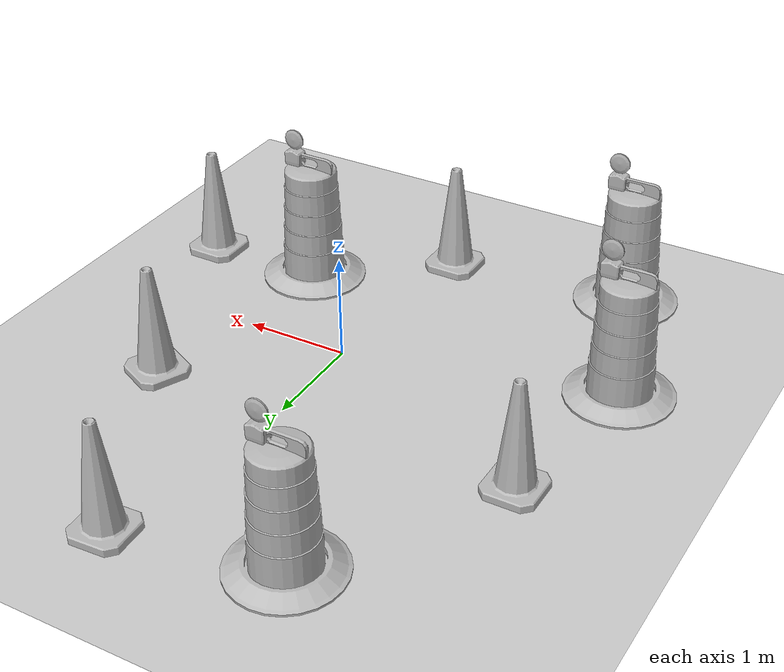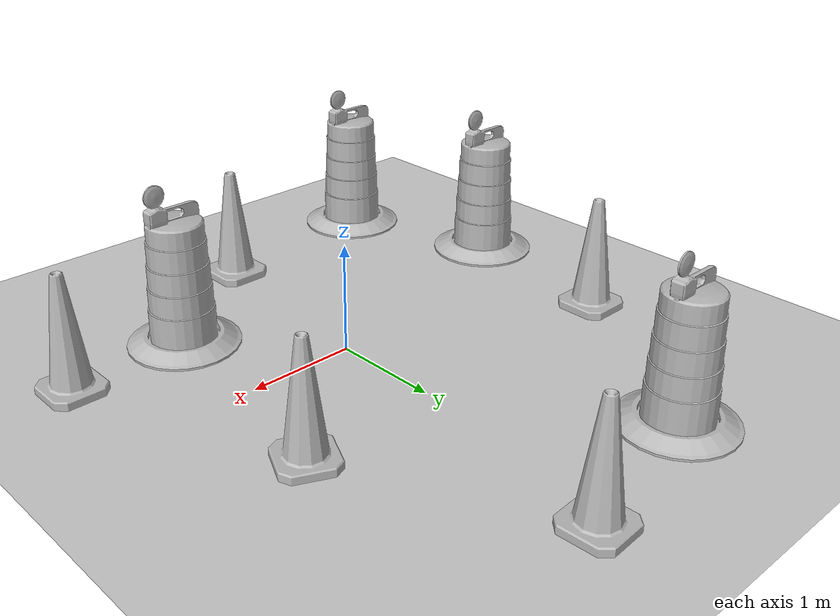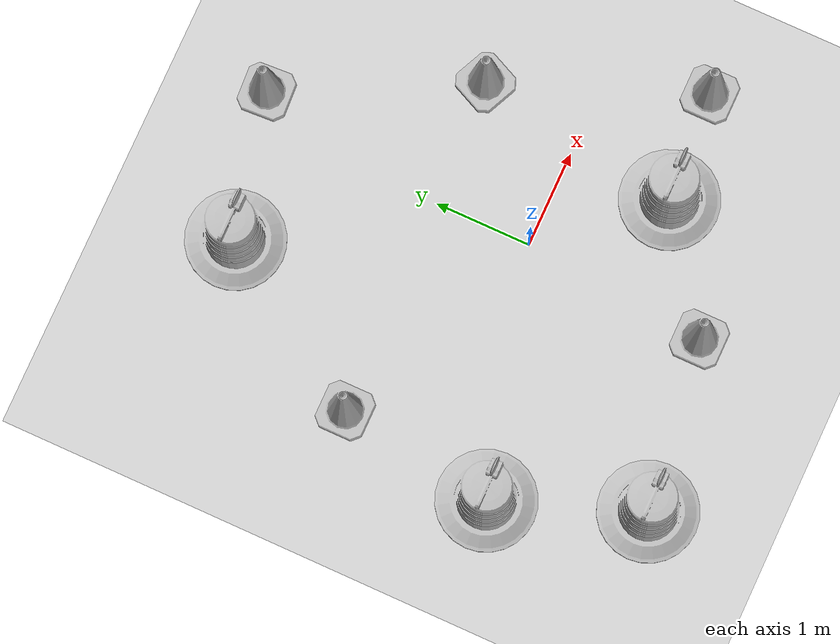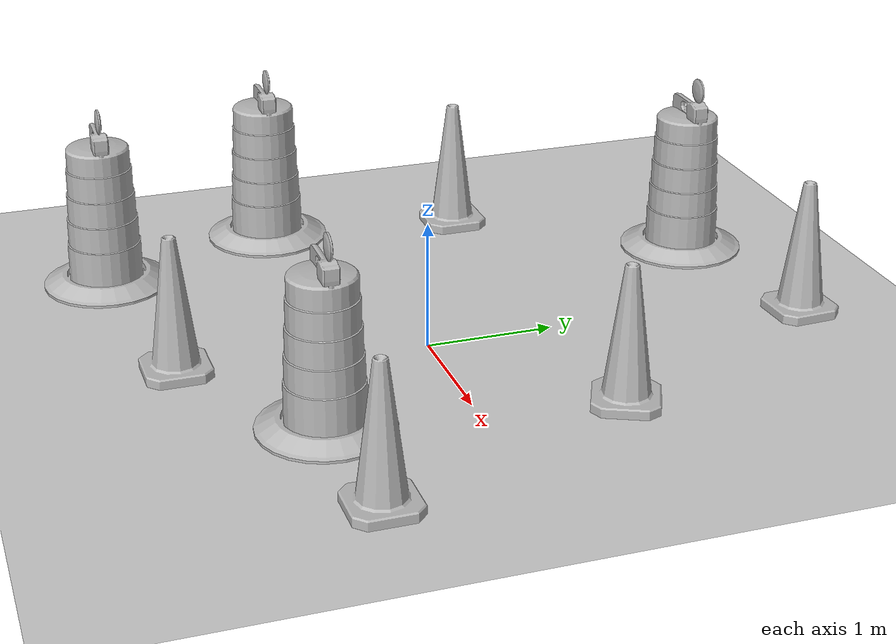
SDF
<sdf version="1.7">
 <world name="default">
  <light name="sun" type="directional">
   <pose>0 0 10 0 -0 0</pose>
   <diffuse>0.8 0.8 0.8 1</diffuse>
   <specular>0.2 0.2 0.2 1</specular>
   <attenuation>
    <range>1000</range>
    <constant>0.9</constant>
    <linear>0.01</linear>
    <quadratic>0.001</quadratic>
   </attenuation>
   <direction>-0.5 0.1 -0.9</direction>
   <spot><inner_angle>0</inner_angle><outer_angle>0</outer_angle><falloff>0</falloff></spot>
  </light>
  <model name="ground_plane">
   <static>1</static>
   <link name="link">
    <collision name="collision">
     <geometry><plane><normal>0 0 1</normal><size>100 100</size></plane></geometry>
     <surface>
      <contact><collide_bitmask>65535</collide_bitmask></contact>
      <friction><ode><mu>100</mu><mu2>50</mu2></ode></friction>
     </surface>
    </collision>
    <visual name="visual">
     <cast_shadows>0</cast_shadows>
     <geometry><plane><normal>0 0 1</normal><size>100 100</size></plane></geometry>
     <material>
      <script><uri>file://media/materials/scripts/gazebo.material</uri><name>Gazebo/Grey</name></script>
     </material>
    </visual>
   </link>
  </model>
  <gravity>0 0 -9.8</gravity>
  <magnetic_field>6e-06 2.3e-05 -4.2e-05</magnetic_field>
  <atmosphere type="adiabatic"/>
  <physics type="ode">
   <max_step_size>0.001</max_step_size>
   <real_time_factor>1</real_time_factor>
   <real_time_update_rate>1000</real_time_update_rate>
  </physics>
  <scene><ambient>0.4 0.4 0.4 1</ambient><background>0.7 0.7 0.7 1</background><shadows>1</shadows></scene>
  <audio><device>default</device></audio>
  <spherical_coordinates>
   <surface_model>EARTH_WGS84</surface_model>
   <latitude_deg>0</latitude_deg>
   <longitude_deg>0</longitude_deg>
   <elevation>0</elevation>
   <heading_deg>0</heading_deg>
  </spherical_coordinates>
  <model name="Construction Barrel">
   <link name="link">
    <inertial>
     <pose>0 0 0.4 0 -0 0</pose>
     <mass>500</mass>
     <inertia><ixx>51.2096</ixx><iyy>51.2096</iyy><izz>25</izz><ixy>0</ixy><ixz>0</ixz><iyz>0</iyz></inertia>
    </inertial>
    <collision name="collision">
     <geometry><mesh><uri>model://construction_barrel/meshes/construction_barrel.dae</uri></mesh></geometry>
    </collision>
    <visual name="visual">
     <geometry><mesh><uri>model://construction_barrel/meshes/construction_barrel.dae</uri></mesh></geometry>
    </visual>
   </link>
   <pose>-2.48509 -0.659438 -0 0 -0 -3.8e-05</pose>
  </model>
  <model name="Construction Cone">
   <link name="link">
    <collision name="collision">
     <geometry>
      <mesh><scale>10 10 10</scale><uri>model://construction_cone/meshes/construction_cone.dae</uri></mesh>
     </geometry>
    </collision>
    <visual name="visual">
     <geometry>
      <mesh><scale>10 10 10</scale><uri>model://construction_cone/meshes/construction_cone.dae</uri></mesh>
     </geometry>
    </visual>
    <inertial>
     <inertia><ixx>1</ixx><ixy>0</ixy><ixz>0</ixz><iyy>1</iyy><iyz>0</iyz><izz>1</izz></inertia>
     <mass>1</mass>
    </inertial>
   </link>
   <pose>1.31163 1.06288 -0 0 -1e-06 -0.43403</pose>
  </model>
  <model name="Construction Barrel_0">
   <link name="link">
    <inertial>
     <pose>0 0 0.4 0 -0 0</pose>
     <mass>500</mass>
     <inertia><ixx>51.2096</ixx><iyy>51.2096</iyy><izz>25</izz><ixy>0</ixy><ixz>0</ixz><iyz>0</iyz></inertia>
    </inertial>
    <collision name="collision">
     <geometry><mesh><uri>model://construction_barrel/meshes/construction_barrel.dae</uri></mesh></geometry>
    </collision>
    <visual name="visual">
     <geometry><mesh><uri>model://construction_barrel/meshes/construction_barrel.dae</uri></mesh></geometry>
    </visual>
   </link>
   <pose>0.985044 -1.07776 0 0 0 -3.2e-05</pose>
  </model>
  <model name="Construction Cone_0">
   <link name="link">
    <collision name="collision">
     <geometry>
      <mesh><scale>10 10 10</scale><uri>model://construction_cone/meshes/construction_cone.dae</uri></mesh>
     </geometry>
    </collision>
    <visual name="visual">
     <geometry>
      <mesh><scale>10 10 10</scale><uri>model://construction_cone/meshes/construction_cone.dae</uri></mesh>
     </geometry>
    </visual>
    <inertial>
     <inertia><ixx>1</ixx><ixy>0</ixy><ixz>0</ixz><iyy>1</iyy><iyz>0</iyz><izz>1</izz></inertia>
     <mass>1</mass>
    </inertial>
   </link>
   <pose>-2.24963 0.964244 -1e-05 -0 -0 -0</pose>
  </model>
  <model name="Construction Cone_1">
   <link name="link">
    <collision name="collision">
     <geometry>
      <mesh><scale>10 10 10</scale><uri>model://construction_cone/meshes/construction_cone.dae</uri></mesh>
     </geometry>
    </collision>
    <visual name="visual">
     <geometry>
      <mesh><scale>10 10 10</scale><uri>model://construction_cone/meshes/construction_cone.dae</uri></mesh>
     </geometry>
    </visual>
    <inertial>
     <inertia><ixx>1</ixx><ixy>0</ixy><ixz>0</ixz><iyy>1</iyy><iyz>0</iyz><izz>1</izz></inertia>
     <mass>1</mass>
    </inertial>
   </link>
   <pose>0.330052 3.00087 -3e-06 -0 -1e-06 0.055143</pose>
  </model>
  <model name="Construction Cone_2">
   <link name="link">
    <collision name="collision">
     <geometry>
      <mesh><scale>10 10 10</scale><uri>model://construction_cone/meshes/construction_cone.dae</uri></mesh>
     </geometry>
    </collision>
    <visual name="visual">
     <geometry>
      <mesh><scale>10 10 10</scale><uri>model://construction_cone/meshes/construction_cone.dae</uri></mesh>
     </geometry>
    </visual>
    <inertial>
     <inertia><ixx>1</ixx><ixy>0</ixy><ixz>0</ixz><iyy>1</iyy><iyz>0</iyz><izz>1</izz></inertia>
     <mass>1</mass>
    </inertial>
   </link>
   <pose>2.11783 -1.01151 -0 0 -1e-06 0</pose>
  </model>
  <model name="Construction Cone_3">
   <link name="link">
    <collision name="collision">
     <geometry>
      <mesh><scale>10 10 10</scale><uri>model://construction_cone/meshes/construction_cone.dae</uri></mesh>
     </geometry>
    </collision>
    <visual name="visual">
     <geometry>
      <mesh><scale>10 10 10</scale><uri>model://construction_cone/meshes/construction_cone.dae</uri></mesh>
     </geometry>
    </visual>
    <inertial>
     <inertia><ixx>1</ixx><ixy>0</ixy><ixz>0</ixz><iyy>1</iyy><iyz>0</iyz><izz>1</izz></inertia>
     <mass>1</mass>
    </inertial>
   </link>
   <pose>-0.168437 -1.91174 -0 0 -0 0</pose>
  </model>
  <model name="Construction Barrel_1">
   <link name="link">
    <inertial>
     <pose>0 0 0.4 0 -0 0</pose>
     <mass>500</mass>
     <inertia><ixx>51.2096</ixx><iyy>51.2096</iyy><izz>25</izz><ixy>0</ixy><ixz>0</ixz><iyz>0</iyz></inertia>
    </inertial>
    <collision name="collision">
     <geometry><mesh><uri>model://construction_barrel/meshes/construction_barrel.dae</uri></mesh></geometry>
    </collision>
    <visual name="visual">
     <geometry><mesh><uri>model://construction_barrel/meshes/construction_barrel.dae</uri></mesh></geometry>
    </visual>
   </link>
   <pose>-1.1458 2.66021 -1e-06 3e-06 7e-06 -2.8e-05</pose>
  </model>
  <model name="Construction Barrel_2">
   <link name="link">
    <inertial>
     <pose>0 0 0.4 0 -0 0</pose>
     <mass>500</mass>
     <inertia><ixx>51.2096</ixx><iyy>51.2096</iyy><izz>25</izz><ixy>0</ixy><ixz>0</ixz><iyz>0</iyz></inertia>
    </inertial>
    <collision name="collision">
     <geometry><mesh><uri>model://construction_barrel/meshes/construction_barrel.dae</uri></mesh></geometry>
    </collision>
    <visual name="visual">
     <geometry><mesh><uri>model://construction_barrel/meshes/construction_barrel.dae</uri></mesh></geometry>
    </visual>
   </link>
   <pose>-1.93015 -2.14517 -2e-06 7e-06 -4e-06 -3.3e-05</pose>
  </model>
 </world>
</sdf>
